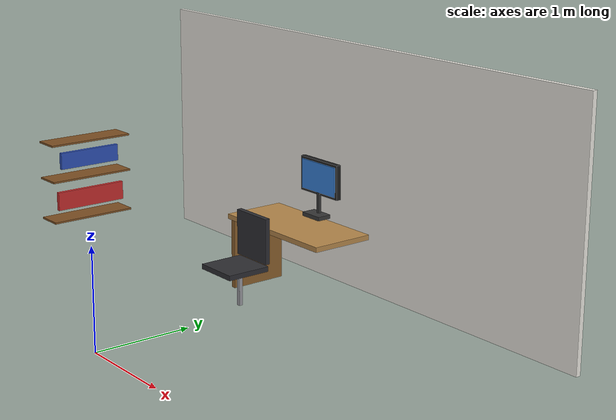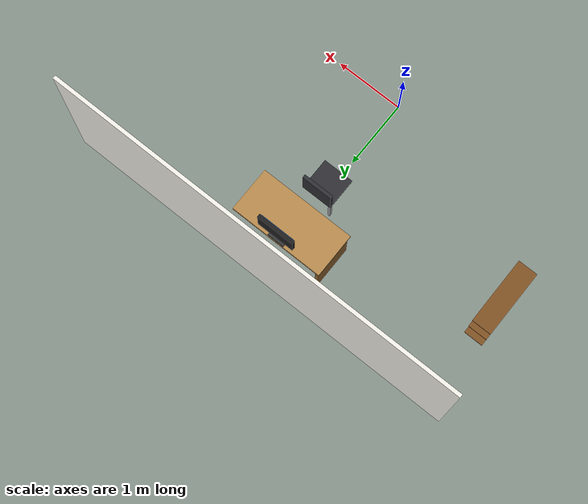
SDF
<sdf version="1.10">
 <world name="bps_room">
  <model name="wall_north">
   <static>true</static>
   <pose>0 3 1.25 0 0 0</pose>
   <link name="link">
    <collision name="collision"><geometry><box><size>6 0.05 2.5</size></box></geometry></collision>
    <visual name="visual">
     <geometry><box><size>6 0.05 2.5</size></box></geometry>
     <material><ambient>0.95 0.94 0.91 1</ambient><diffuse>0.95 0.94 0.91 1</diffuse></material>
    </visual>
   </link>
  </model>
  <model name="shelf_1">
   <static>true</static>
   <pose>-2.7 1.5 0.4 0 0 0</pose>
   <link name="link">
    <collision name="collision"><geometry><box><size>0.28 0.95 0.02</size></box></geometry></collision>
    <visual name="visual">
     <geometry><box><size>0.28 0.95 0.02</size></box></geometry>
     <material><ambient>0.50 0.32 0.14 1</ambient><diffuse>0.50 0.32 0.14 1</diffuse></material>
    </visual>
   </link>
  </model>
  <model name="shelf_2">
   <static>true</static>
   <pose>-2.7 1.5 0.85 0 0 0</pose>
   <link name="link">
    <collision name="collision"><geometry><box><size>0.28 0.95 0.02</size></box></geometry></collision>
    <visual name="visual">
     <geometry><box><size>0.28 0.95 0.02</size></box></geometry>
     <material><ambient>0.50 0.32 0.14 1</ambient><diffuse>0.50 0.32 0.14 1</diffuse></material>
    </visual>
   </link>
  </model>
  <model name="shelf_3">
   <static>true</static>
   <pose>-2.7 1.5 1.25 0 0 0</pose>
   <link name="link">
    <collision name="collision"><geometry><box><size>0.28 0.95 0.02</size></box></geometry></collision>
    <visual name="visual">
     <geometry><box><size>0.28 0.95 0.02</size></box></geometry>
     <material><ambient>0.50 0.32 0.14 1</ambient><diffuse>0.50 0.32 0.14 1</diffuse></material>
    </visual>
   </link>
  </model>
  <model name="books_row1">
   <static>true</static>
   <pose>-2.62 1.5 0.62 0 0 0</pose>
   <link name="link">
    <visual name="visual">
     <geometry><box><size>0.04 0.8 0.2</size></box></geometry>
     <material><ambient>0.78 0.18 0.18 1</ambient><diffuse>0.78 0.18 0.18 1</diffuse></material>
    </visual>
   </link>
  </model>
  <model name="books_row2">
   <static>true</static>
   <pose>-2.62 1.5 1.06 0 0 0</pose>
   <link name="link">
    <visual name="visual">
     <geometry><box><size>0.04 0.7 0.18</size></box></geometry>
     <material><ambient>0.18 0.32 0.72 1</ambient><diffuse>0.18 0.32 0.72 1</diffuse></material>
    </visual>
   </link>
  </model>
  <model name="desk">
   <static>true</static>
   <pose>0 2.3 0.75 0 0 0</pose>
   <link name="link">
    <collision name="collision"><geometry><box><size>1.4 0.65 0.05</size></box></geometry></collision>
    <visual name="visual">
     <geometry><box><size>1.4 0.65 0.05</size></box></geometry>
     <material><ambient>0.72 0.54 0.30 1</ambient><diffuse>0.72 0.54 0.30 1</diffuse></material>
    </visual>
   </link>
  </model>
  <model name="desk_leg_left">
   <static>true</static>
   <pose>-0.65 2.3 0.375 0 0 0</pose>
   <link name="link">
    <collision name="collision"><geometry><box><size>0.05 0.6 0.75</size></box></geometry></collision>
    <visual name="visual">
     <geometry><box><size>0.05 0.6 0.75</size></box></geometry>
     <material><ambient>0.55 0.38 0.18 1</ambient><diffuse>0.55 0.38 0.18 1</diffuse></material>
    </visual>
   </link>
  </model>
  <model name="monitor_base">
   <static>true</static>
   <pose>0 2.55 0.82 0 0 0</pose>
   <link name="link">
    <collision name="collision"><geometry><box><size>0.25 0.15 0.04</size></box></geometry></collision>
    <visual name="visual">
     <geometry><box><size>0.25 0.15 0.04</size></box></geometry>
     <material><ambient>0.22 0.22 0.22 1</ambient><diffuse>0.22 0.22 0.22 1</diffuse></material>
    </visual>
   </link>
  </model>
  <model name="monitor_stand">
   <static>true</static>
   <pose>0 2.58 0.97 0 0 0</pose>
   <link name="link">
    <collision name="collision"><geometry><box><size>0.03 0.03 0.26</size></box></geometry></collision>
    <visual name="visual">
     <geometry><box><size>0.03 0.03 0.26</size></box></geometry>
     <material><ambient>0.22 0.22 0.22 1</ambient><diffuse>0.22 0.22 0.22 1</diffuse></material>
    </visual>
   </link>
  </model>
  <model name="monitor_screen">
   <static>true</static>
   <pose>0 2.6 1.2 0 0 0</pose>
   <link name="link">
    <collision name="collision"><geometry><box><size>0.55 0.05 0.35</size></box></geometry></collision>
    <visual name="visual">
     <geometry><box><size>0.55 0.05 0.35</size></box></geometry>
     <material><ambient>0.12 0.12 0.12 1</ambient><diffuse>0.12 0.12 0.12 1</diffuse></material>
    </visual>
   </link>
  </model>
  <model name="monitor_face">
   <static>true</static>
   <pose>0 2.57 1.2 0 0 0</pose>
   <link name="link">
    <visual name="visual">
     <geometry><box><size>0.5 0.01 0.3</size></box></geometry>
     <material>
      <ambient>0.22 0.52 0.88 1</ambient>
      <diffuse>0.22 0.52 0.88 1</diffuse>
      <emissive>0.10 0.25 0.45 1</emissive>
     </material>
    </visual>
   </link>
  </model>
  <model name="chair_seat">
   <static>true</static>
   <pose>0 1.55 0.48 0 0 0</pose>
   <link name="link">
    <collision name="collision"><geometry><box><size>0.45 0.45 0.05</size></box></geometry></collision>
    <visual name="visual">
     <geometry><box><size>0.45 0.45 0.05</size></box></geometry>
     <material><ambient>0.18 0.18 0.20 1</ambient><diffuse>0.18 0.18 0.20 1</diffuse></material>
    </visual>
   </link>
  </model>
  <model name="chair_back">
   <static>true</static>
   <pose>0 1.77 0.75 0 0 0</pose>
   <link name="link">
    <collision name="collision"><geometry><box><size>0.45 0.05 0.45</size></box></geometry></collision>
    <visual name="visual">
     <geometry><box><size>0.45 0.05 0.45</size></box></geometry>
     <material><ambient>0.18 0.18 0.20 1</ambient><diffuse>0.18 0.18 0.20 1</diffuse></material>
    </visual>
   </link>
  </model>
  <model name="chair_leg_bl">
   <static>true</static>
   <pose>-0.2 1.75 0.24 0 0 0</pose>
   <link name="link">
    <collision name="collision"><geometry><box><size>0.04 0.04 0.48</size></box></geometry></collision>
    <visual name="visual">
     <geometry><box><size>0.04 0.04 0.48</size></box></geometry>
     <material><ambient>0.60 0.60 0.62 1</ambient><diffuse>0.60 0.60 0.62 1</diffuse></material>
    </visual>
   </link>
  </model>
 </world>
</sdf>
